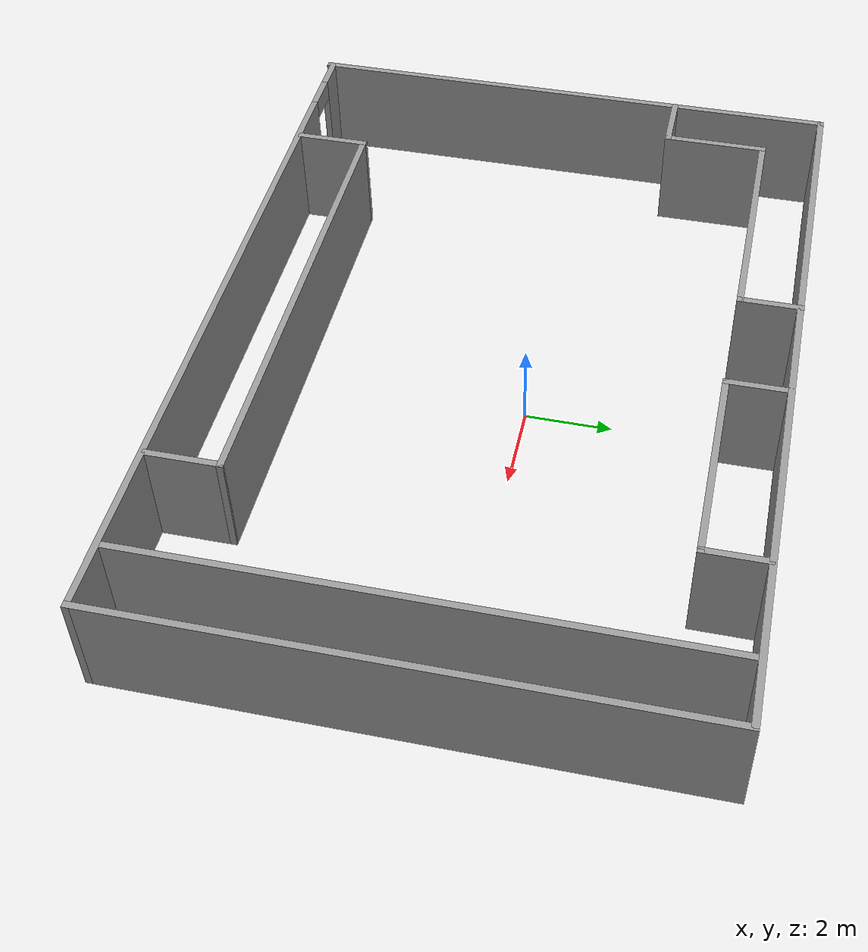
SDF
<?xml version='1.0'?>
<sdf version='1.6'>
  <model name='garage'>
    <pose frame=''>-0.21397 -0.64775 0 0 -0 0</pose>
    <link name='Wall_10'>
      <collision name='Wall_10_Collision'>
        <geometry>
          <box>
            <size>1.5 0.15 2.5</size>
          </box>
        </geometry>
        <pose frame=''>0 0 1.25 0 -0 0</pose>
      </collision>
      <visual name='Wall_10_Visual'>
        <pose frame=''>0 0 1.25 0 -0 0</pose>
        <geometry>
          <box>
            <size>1.5 0.15 2.5</size>
          </box>
        </geometry>
        <material>
          <script>
            <uri>file://media/materials/scripts/gazebo.material</uri>
            <name>Gazebo/Grey</name>
          </script>
          <ambient>1 1 1 1</ambient>
        </material>
        <meta>
          <layer>0</layer>
        </meta>
      </visual>
      <pose frame=''>-8.25188 2.72812 0 0 -0 0</pose>
    </link>
    <link name='Wall_11'>
      <collision name='Wall_11_Collision'>
        <geometry>
          <box>
            <size>2.5 0.15 2.5</size>
          </box>
        </geometry>
        <pose frame=''>0 0 1.25 0 -0 0</pose>
      </collision>
      <visual name='Wall_11_Visual'>
        <pose frame=''>0 0 1.25 0 -0 0</pose>
        <geometry>
          <box>
            <size>2.5 0.15 2.5</size>
          </box>
        </geometry>
        <material>
          <script>
            <uri>file://media/materials/scripts/gazebo.material</uri>
            <name>Gazebo/Grey</name>
          </script>
          <ambient>1 1 1 1</ambient>
        </material>
        <meta>
          <layer>0</layer>
        </meta>
      </visual>
      <pose frame=''>-7.57688 3.90312 0 0 -0 1.5708</pose>
    </link>
    <link name='Wall_12'>
      <collision name='Wall_12_Collision'>
        <geometry>
          <box>
            <size>5.75 0.15 2.5</size>
          </box>
        </geometry>
        <pose frame=''>0 0 1.25 0 -0 0</pose>
      </collision>
      <visual name='Wall_12_Visual'>
        <pose frame=''>0 0 1.25 0 -0 0</pose>
        <geometry>
          <box>
            <size>5.75 0.15 2.5</size>
          </box>
        </geometry>
        <material>
          <script>
            <uri>file://media/materials/scripts/gazebo.material</uri>
            <name>Gazebo/Grey</name>
          </script>
          <ambient>1 1 1 1</ambient>
        </material>
        <meta>
          <layer>0</layer>
        </meta>
      </visual>
      <pose frame=''>-4.77688 5.07812 0 0 -0 0</pose>
    </link>
    <link name='Wall_13'>
      <collision name='Wall_13_Collision'>
        <geometry>
          <box>
            <size>1.5 0.15 2.5</size>
          </box>
        </geometry>
        <pose frame=''>0 0 1.25 0 -0 0</pose>
      </collision>
      <visual name='Wall_13_Visual'>
        <pose frame=''>0 0 1.25 0 -0 0</pose>
        <geometry>
          <box>
            <size>1.5 0.15 2.5</size>
          </box>
        </geometry>
        <material>
          <script>
            <uri>file://media/materials/scripts/gazebo.material</uri>
            <name>Gazebo/Grey</name>
          </script>
          <ambient>1 1 1 1</ambient>
        </material>
        <meta>
          <layer>0</layer>
        </meta>
      </visual>
      <pose frame=''>-1.97687 5.75312 0 0 -0 1.5708</pose>
    </link>
    <link name='Wall_15'>
      <collision name='Wall_15_Collision'>
        <geometry>
          <box>
            <size>1.5 0.15 2.5</size>
          </box>
        </geometry>
        <pose frame=''>0 0 1.25 0 -0 0</pose>
      </collision>
      <visual name='Wall_15_Visual'>
        <pose frame=''>0 0 1.25 0 -0 0</pose>
        <geometry>
          <box>
            <size>1.5 0.15 2.5</size>
          </box>
        </geometry>
        <material>
          <script>
            <uri>file://media/materials/scripts/gazebo.material</uri>
            <name>Gazebo/Grey</name>
          </script>
          <ambient>1 1 1 1</ambient>
        </material>
        <meta>
          <layer>0</layer>
        </meta>
      </visual>
      <pose frame=''>0.641749 5.71171 0 0 -0 -1.5708</pose>
    </link>
    <link name='Wall_16'>
      <collision name='Wall_16_Collision'>
        <geometry>
          <box>
            <size>4.75 0.15 2.5</size>
          </box>
        </geometry>
        <pose frame=''>0 0 1.25 0 -0 0</pose>
      </collision>
      <visual name='Wall_16_Visual'>
        <pose frame=''>0 0 1.25 0 -0 0</pose>
        <geometry>
          <box>
            <size>4.75 0.15 2.5</size>
          </box>
        </geometry>
        <material>
          <script>
            <uri>file://media/materials/scripts/gazebo.material</uri>
            <name>Gazebo/Grey</name>
          </script>
          <ambient>1 1 1 1</ambient>
        </material>
        <meta>
          <layer>0</layer>
        </meta>
      </visual>
      <pose frame=''>2.94175 5.03671 0 0 -0 0</pose>
    </link>
    <link name='Wall_19'>
      <collision name='Wall_19_Collision'>
        <geometry>
          <box>
            <size>1.5 0.15 2.5</size>
          </box>
        </geometry>
        <pose frame=''>0 0 1.25 0 -0 0</pose>
      </collision>
      <visual name='Wall_19_Visual'>
        <pose frame=''>0 0 1.25 0 -0 0</pose>
        <geometry>
          <box>
            <size>1.5 0.15 2.5</size>
          </box>
        </geometry>
        <material>
          <script>
            <uri>file://media/materials/scripts/gazebo.material</uri>
            <name>Gazebo/Grey</name>
          </script>
          <ambient>1 1 1 1</ambient>
        </material>
        <meta>
          <layer>0</layer>
        </meta>
      </visual>
      <pose frame=''>5.24175 5.71171 0 0 -0 1.5708</pose>
    </link>
    <link name='Wall_21'>
      <collision name='Wall_21_Collision'>
        <geometry>
          <box>
            <size>12.75 0.15 2.5</size>
          </box>
        </geometry>
        <pose frame=''>0 0 1.25 0 -0 0</pose>
      </collision>
      <visual name='Wall_21_Visual'>
        <pose frame=''>0 0 1.25 0 -0 0</pose>
        <geometry>
          <box>
            <size>12.75 0.15 2.5</size>
          </box>
        </geometry>
        <material>
          <script>
            <uri>file://media/materials/scripts/gazebo.material</uri>
            <name>Gazebo/Grey</name>
          </script>
          <ambient>1 1 1 1</ambient>
        </material>
        <meta>
          <layer>0</layer>
        </meta>
      </visual>
      <pose frame=''>7.46643 0.016349 0 0 -0 -1.5708</pose>
    </link>
    <link name='Wall_23'>
      <collision name='Wall_23_Collision'>
        <geometry>
          <box>
            <size>1.75 0.15 2.5</size>
          </box>
        </geometry>
        <pose frame=''>0 0 1.25 0 -0 0</pose>
      </collision>
      <visual name='Wall_23_Visual'>
        <pose frame=''>0 0 1.25 0 -0 0</pose>
        <geometry>
          <box>
            <size>1.75 0.15 2.5</size>
          </box>
        </geometry>
        <material>
          <script>
            <uri>file://media/materials/scripts/gazebo.material</uri>
            <name>Gazebo/Grey</name>
          </script>
          <ambient>1 1 1 1</ambient>
        </material>
        <meta>
          <layer>0</layer>
        </meta>
      </visual>
      <pose frame=''>-5.79596 -5.47765 0 0 -0 1.5708</pose>
    </link>
    <link name='Wall_24'>
      <collision name='Wall_24_Collision'>
        <geometry>
          <box>
            <size>11 0.15 2.5</size>
          </box>
        </geometry>
        <pose frame=''>0 0 1.25 0 -0 0</pose>
      </collision>
      <visual name='Wall_24_Visual'>
        <pose frame=''>0 0 1.25 0 -0 0</pose>
        <geometry>
          <box>
            <size>11 0.15 2.5</size>
          </box>
        </geometry>
        <material>
          <script>
            <uri>file://media/materials/scripts/gazebo.material</uri>
            <name>Gazebo/Grey</name>
          </script>
          <ambient>1 1 1 1</ambient>
        </material>
        <meta>
          <layer>0</layer>
        </meta>
      </visual>
      <pose frame=''>-0.370965 -4.67765 0 0 -0 0</pose>
    </link>
    <link name='Wall_25'>
      <collision name='Wall_25_Collision'>
        <geometry>
          <box>
            <size>1.75 0.15 2.5</size>
          </box>
        </geometry>
        <pose frame=''>0 0 1.25 0 -0 0</pose>
      </collision>
      <visual name='Wall_25_Visual'>
        <pose frame=''>0 0 1.25 0 -0 0</pose>
        <geometry>
          <box>
            <size>1.75 0.15 2.5</size>
          </box>
        </geometry>
        <material>
          <script>
            <uri>file://media/materials/scripts/gazebo.material</uri>
            <name>Gazebo/Grey</name>
          </script>
          <ambient>1 1 1 1</ambient>
        </material>
        <meta>
          <layer>0</layer>
        </meta>
      </visual>
      <pose frame=''>5.05403 -5.47765 0 0 -0 -1.5708</pose>
    </link>
    <link name='Wall_3'>
      <collision name='Wall_3_Collision'>
        <geometry>
          <box>
            <size>12.9259 0.15 2.5</size>
          </box>
        </geometry>
        <pose frame=''>0 0 1.25 0 -0 0</pose>
      </collision>
      <visual name='Wall_3_Visual'>
        <pose frame=''>0 0 1.25 0 -0 0</pose>
        <geometry>
          <box>
            <size>12.9259 0.15 2.5</size>
          </box>
        </geometry>
        <material>
          <script>
            <uri>file://media/materials/scripts/gazebo.material</uri>
            <name>Gazebo/Grey</name>
          </script>
          <ambient>1 1 1 1</ambient>
        </material>
        <meta>
          <layer>0</layer>
        </meta>
      </visual>
      <pose frame=''>8.92687 0.033939 0 0 -0 -1.5708</pose>
    </link>
    <link name='Wall_4'>
      <pose frame=''>0.001874 -6.35401 0 0 -0 3.14159</pose>
      <visual name='Wall_4_Visual_0'>
        <pose frame=''>-0.893843 0 1.25 0 -0 0</pose>
        <geometry>
          <box>
            <size>16.2123 0.15 2.5</size>
          </box>
        </geometry>
        <material>
          <script>
            <uri>file://media/materials/scripts/gazebo.material</uri>
            <name>Gazebo/Grey</name>
          </script>
          <ambient>1 1 1 1</ambient>
        </material>
        <meta>
          <layer>0</layer>
        </meta>
      </visual>
      <collision name='Wall_4_Collision_0'>
        <geometry>
          <box>
            <size>16.2123 0.15 2.5</size>
          </box>
        </geometry>
        <pose frame=''>-0.893843 0 1.25 0 -0 0</pose>
      </collision>
      <visual name='Wall_4_Visual_1'>
        <pose frame=''>8.55616 0 1.25 0 -0 0</pose>
        <geometry>
          <box>
            <size>0.887687 0.15 2.5</size>
          </box>
        </geometry>
        <material>
          <script>
            <uri>file://media/materials/scripts/gazebo.material</uri>
            <name>Gazebo/Grey</name>
          </script>
          <ambient>1 1 1 1</ambient>
        </material>
        <meta>
          <layer>0</layer>
        </meta>
      </visual>
      <collision name='Wall_4_Collision_1'>
        <geometry>
          <box>
            <size>0.887687 0.15 2.5</size>
          </box>
        </geometry>
        <pose frame=''>8.55616 0 1.25 0 -0 0</pose>
      </collision>
      <visual name='Wall_4_Visual_2'>
        <pose frame=''>7.66231 0 2.25 0 -0 0</pose>
        <geometry>
          <box>
            <size>0.9 0.15 0.5</size>
          </box>
        </geometry>
        <material>
          <script>
            <uri>file://media/materials/scripts/gazebo.material</uri>
            <name>Gazebo/Grey</name>
          </script>
          <ambient>1 1 1 1</ambient>
        </material>
        <meta>
          <layer>0</layer>
        </meta>
      </visual>
      <collision name='Wall_4_Collision_2'>
        <geometry>
          <box>
            <size>0.9 0.15 0.5</size>
          </box>
        </geometry>
        <pose frame=''>7.66231 0 2.25 0 -0 0</pose>
      </collision>
    </link>
    <link name='Wall_7'>
      <collision name='Wall_7_Collision'>
        <geometry>
          <box>
            <size>18 0.15 2.5</size>
          </box>
        </geometry>
        <pose frame=''>0 0 1.25 0 -0 0</pose>
      </collision>
      <visual name='Wall_7_Visual'>
        <pose frame=''>0 0 1.25 0 -0 0</pose>
        <geometry>
          <box>
            <size>18 0.15 2.5</size>
          </box>
        </geometry>
        <material>
          <script>
            <uri>file://media/materials/scripts/gazebo.material</uri>
            <name>Gazebo/Grey</name>
          </script>
          <ambient>1 1 1 1</ambient>
        </material>
        <meta>
          <layer>0</layer>
        </meta>
      </visual>
      <pose frame=''>0.001874 6.42189 0 0 -0 3.14159</pose>
    </link>
    <link name='Wall_8'>
      <collision name='Wall_8_Collision'>
        <geometry>
          <box>
            <size>13 0.15 2.5</size>
          </box>
        </geometry>
        <pose frame=''>0 0 1.25 0 -0 0</pose>
      </collision>
      <visual name='Wall_8_Visual'>
        <pose frame=''>0 0 1.25 0 -0 0</pose>
        <geometry>
          <box>
            <size>13 0.15 2.5</size>
          </box>
        </geometry>
        <material>
          <script>
            <uri>file://media/materials/scripts/gazebo.material</uri>
            <name>Gazebo/Grey</name>
          </script>
          <ambient>1 1 1 1</ambient>
        </material>
        <meta>
          <layer>0</layer>
        </meta>
      </visual>
      <pose frame=''>-8.92313 -0.003114 0 0 -0 -1.5708</pose>
    </link>
    <static>1</static>
  </model>
</sdf>
